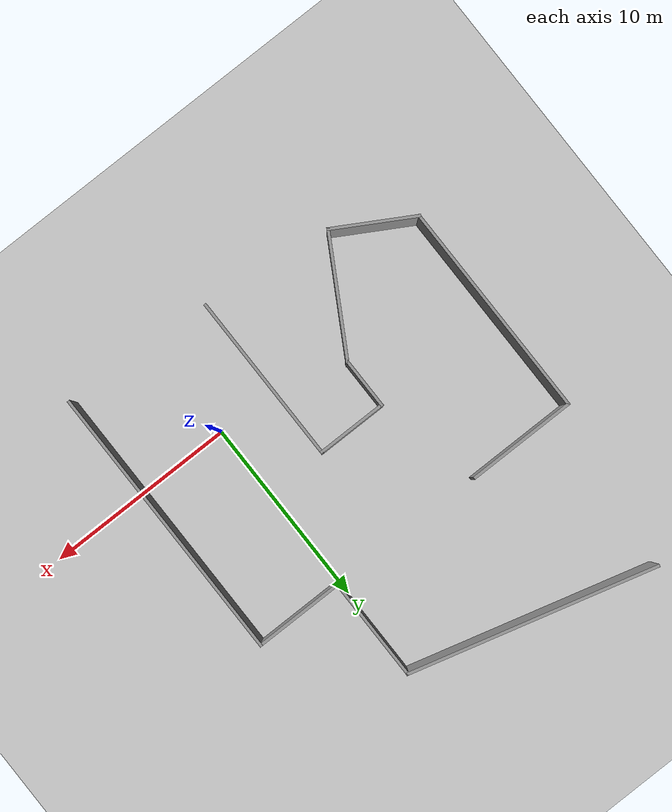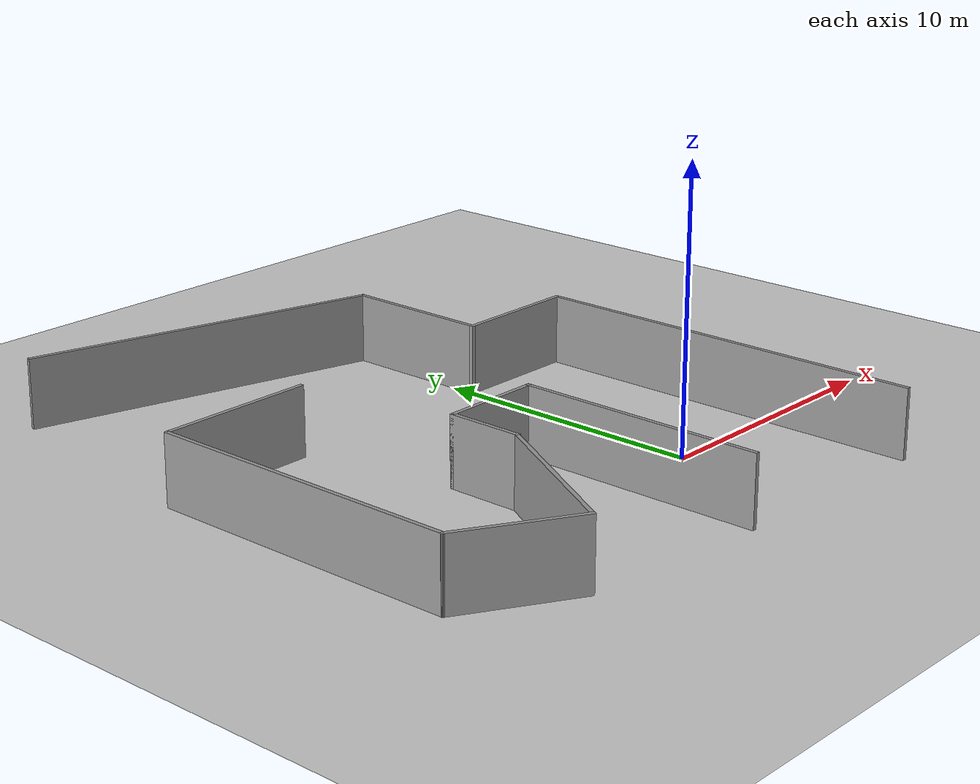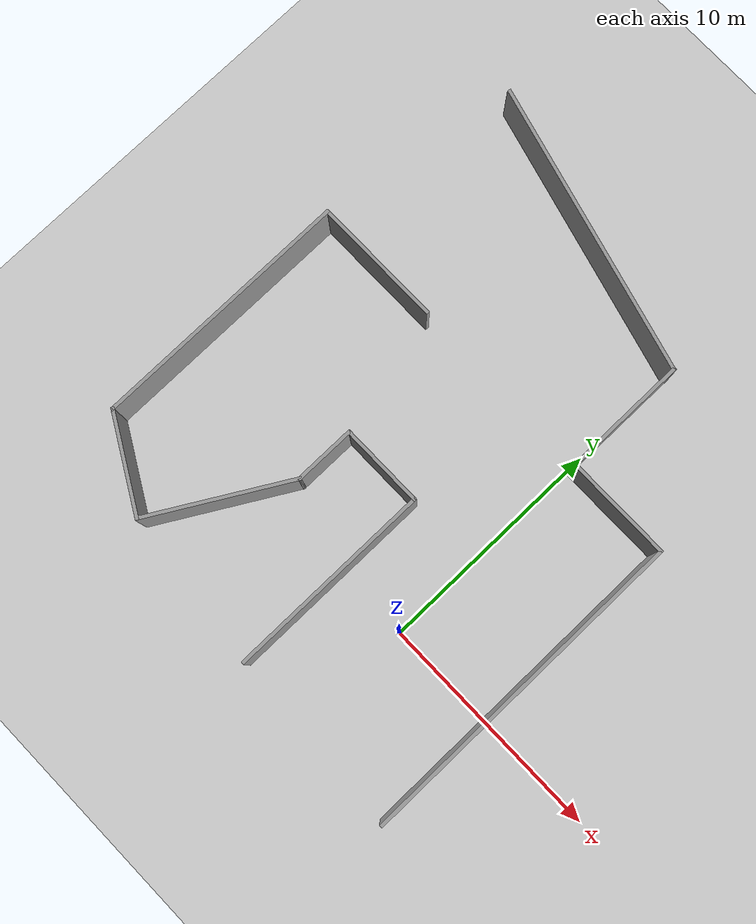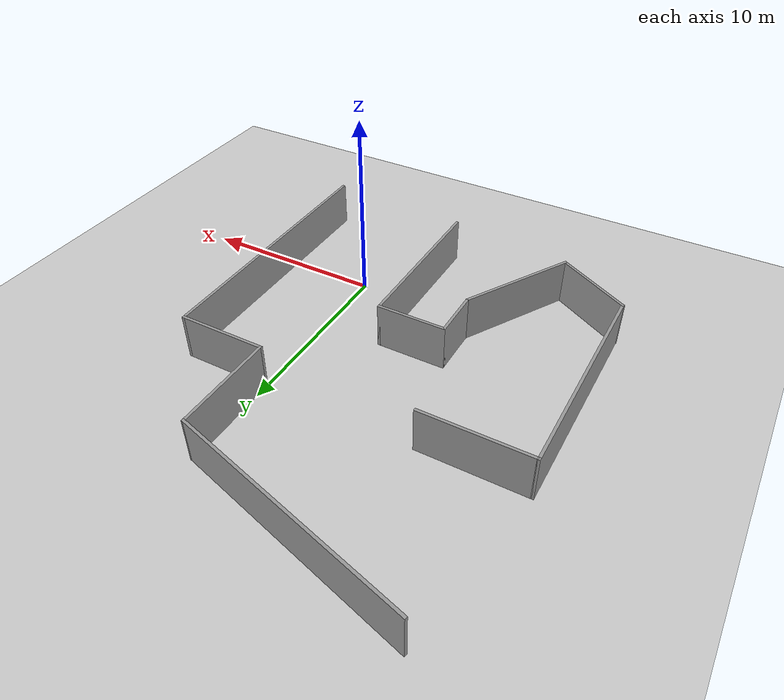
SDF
<sdf version="1.7">
 <world name="default">
  <light name="sun" type="directional">
   <pose>0 0 10 0 -0 0</pose>
   <diffuse>0.8 0.8 0.8 1</diffuse>
   <specular>0.2 0.2 0.2 1</specular>
   <attenuation>
    <range>1000</range>
    <constant>0.9</constant>
    <linear>0.01</linear>
    <quadratic>0.001</quadratic>
   </attenuation>
   <direction>-0.5 0.1 -0.9</direction>
   <spot><inner_angle>0</inner_angle><outer_angle>0</outer_angle><falloff>0</falloff></spot>
  </light>
  <model name="ground_plane">
   <static>1</static>
   <link name="link">
    <collision name="collision">
     <geometry><plane><normal>0 0 1</normal><size>100 100</size></plane></geometry>
     <surface>
      <contact><collide_bitmask>65535</collide_bitmask></contact>
      <friction><ode><mu>100</mu><mu2>50</mu2></ode></friction>
     </surface>
    </collision>
    <visual name="visual">
     <cast_shadows>0</cast_shadows>
     <geometry><plane><normal>0 0 1</normal><size>100 100</size></plane></geometry>
     <material>
      <script><uri>file://media/materials/scripts/gazebo.material</uri><name>Gazebo/Grey</name></script>
     </material>
    </visual>
   </link>
  </model>
  <gravity>0 0 -9.8</gravity>
  <magnetic_field>6e-06 2.3e-05 -4.2e-05</magnetic_field>
  <atmosphere type="adiabatic"/>
  <physics type="ode">
   <max_step_size>0.001</max_step_size>
   <real_time_factor>1</real_time_factor>
   <real_time_update_rate>1000</real_time_update_rate>
  </physics>
  <scene><ambient>0.4 0.4 0.4 1</ambient><background>0.7 0.7 0.7 1</background><shadows>1</shadows></scene>
  <spherical_coordinates>
   <surface_model>EARTH_WGS84</surface_model>
   <latitude_deg>0</latitude_deg>
   <longitude_deg>0</longitude_deg>
   <elevation>0</elevation>
   <heading_deg>0</heading_deg>
  </spherical_coordinates>
  <model name="test">
   <pose>-4.55443 6.25959 0 0 -0 0</pose>
   <link name="Wall_0">
    <collision name="Wall_0_Collision">
     <geometry><box><size>11.5 0.15 2.5</size></box></geometry>
     <pose>0 0 1.25 0 -0 0</pose>
    </collision>
    <visual name="Wall_0_Visual">
     <pose>0 0 1.25 0 -0 0</pose>
     <geometry><box><size>11.5 0.15 2.5</size></box></geometry>
     <material>
      <script><uri>file://media/materials/scripts/gazebo.material</uri><name>Gazebo/Grey</name></script>
      <ambient>1 1 1 1</ambient>
     </material>
     <meta><layer>0</layer></meta>
    </visual>
    <pose>-9.2033 -2.65803 0 0 -0 1.5708</pose>
   </link>
   <link name="Wall_1">
    <collision name="Wall_1_Collision">
     <geometry><box><size>5.75 0.15 2.5</size></box></geometry>
     <pose>0 0 1.25 0 -0 0</pose>
    </collision>
    <visual name="Wall_1_Visual">
     <pose>0 0 1.25 0 -0 0</pose>
     <geometry><box><size>5.75 0.15 2.5</size></box></geometry>
     <material>
      <script><uri>file://media/materials/scripts/gazebo.material</uri><name>Gazebo/Grey</name></script>
      <ambient>1 1 1 1</ambient>
     </material>
     <meta><layer>0</layer></meta>
    </visual>
    <pose>-6.40329 3.01697 0 0 -0 0</pose>
   </link>
   <link name="Wall_10">
    <collision name="Wall_10_Collision">
     <geometry><box><size>4.75 0.15 2.5</size></box></geometry>
     <pose>0 0 1.25 0 -0 0</pose>
    </collision>
    <visual name="Wall_10_Visual">
     <pose>0 0 1.25 0 -0 0</pose>
     <geometry><box><size>4.75 0.15 2.5</size></box></geometry>
     <material>
      <script><uri>file://media/materials/scripts/gazebo.material</uri><name>Gazebo/Grey</name></script>
      <ambient>1 1 1 1</ambient>
     </material>
     <meta><layer>0</layer></meta>
    </visual>
    <pose>6.93074 2.95366 0 0 -0 3.14159</pose>
   </link>
   <link name="Wall_11">
    <collision name="Wall_11_Collision">
     <geometry><box><size>5.5 0.15 2.5</size></box></geometry>
     <pose>0 0 1.25 0 -0 0</pose>
    </collision>
    <visual name="Wall_11_Visual">
     <pose>0 0 1.25 0 -0 0</pose>
     <geometry><box><size>5.5 0.15 2.5</size></box></geometry>
     <material>
      <script><uri>file://media/materials/scripts/gazebo.material</uri><name>Gazebo/Grey</name></script>
      <ambient>1 1 1 1</ambient>
     </material>
     <meta><layer>0</layer></meta>
    </visual>
    <pose>4.63075 5.62866 0 0 -0 1.5708</pose>
   </link>
   <link name="Wall_12">
    <collision name="Wall_12_Collision">
     <geometry><box><size>13 0.15 2.5</size></box></geometry>
     <pose>0 0 1.25 0 -0 0</pose>
    </collision>
    <visual name="Wall_12_Visual">
     <pose>0 0 1.25 0 -0 0</pose>
     <geometry><box><size>13 0.15 2.5</size></box></geometry>
     <material>
      <script><uri>file://media/materials/scripts/gazebo.material</uri><name>Gazebo/Grey</name></script>
      <ambient>1 1 1 1</ambient>
     </material>
     <meta><layer>0</layer></meta>
    </visual>
    <pose>-1.57533 9.96657 0 0 -0 2.87979</pose>
   </link>
   <link name="Wall_3">
    <collision name="Wall_3_Collision">
     <geometry><box><size>4.5 0.15 2.5</size></box></geometry>
     <pose>0 0 1.25 0 -0 0</pose>
    </collision>
    <visual name="Wall_3_Visual">
     <pose>0 0 1.25 0 -0 0</pose>
     <geometry><box><size>4.5 0.15 2.5</size></box></geometry>
     <material>
      <script><uri>file://media/materials/scripts/gazebo.material</uri><name>Gazebo/Grey</name></script>
      <ambient>1 1 1 1</ambient>
     </material>
     <meta><layer>0</layer></meta>
    </visual>
    <pose>-7.31969 -9.42053 0 0 -0 -0.523599</pose>
   </link>
   <link name="Wall_4">
    <collision name="Wall_4_Collision">
     <geometry><box><size>6.5 0.15 2.5</size></box></geometry>
     <pose>0 0 1.25 0 -0 0</pose>
    </collision>
    <visual name="Wall_4_Visual">
     <pose>0 0 1.25 0 -0 0</pose>
     <geometry><box><size>6.5 0.15 2.5</size></box></geometry>
     <material>
      <script><uri>file://media/materials/scripts/gazebo.material</uri><name>Gazebo/Grey</name></script>
      <ambient>1 1 1 1</ambient>
     </material>
     <meta><layer>0</layer></meta>
    </visual>
    <pose>-3.84858 -7.7584 0 0 -0 1.0472</pose>
   </link>
   <link name="Wall_5">
    <collision name="Wall_5_Collision">
     <geometry><box><size>2.75 0.15 2.5</size></box></geometry>
     <pose>0 0 1.25 0 -0 0</pose>
    </collision>
    <visual name="Wall_5_Visual">
     <pose>0 0 1.25 0 -0 0</pose>
     <geometry><box><size>2.75 0.15 2.5</size></box></geometry>
     <material>
      <script><uri>file://media/materials/scripts/gazebo.material</uri><name>Gazebo/Grey</name></script>
      <ambient>1 1 1 1</ambient>
     </material>
     <meta><layer>0</layer></meta>
    </visual>
    <pose>-2.26108 -3.70877 0 0 -0 1.5708</pose>
   </link>
   <link name="Wall_6">
    <collision name="Wall_6_Collision">
     <geometry><box><size>3.75 0.15 2.5</size></box></geometry>
     <pose>0 0 1.25 0 -0 0</pose>
    </collision>
    <visual name="Wall_6_Visual">
     <pose>0 0 1.25 0 -0 0</pose>
     <geometry><box><size>3.75 0.15 2.5</size></box></geometry>
     <material>
      <script><uri>file://media/materials/scripts/gazebo.material</uri><name>Gazebo/Grey</name></script>
      <ambient>1 1 1 1</ambient>
     </material>
     <meta><layer>0</layer></meta>
    </visual>
    <pose>-0.461084 -2.40877 0 0 -0 0</pose>
   </link>
   <link name="Wall_7">
    <collision name="Wall_7_Collision">
     <geometry><box><size>9 0.15 2.5</size></box></geometry>
     <pose>0 0 1.25 0 -0 0</pose>
    </collision>
    <visual name="Wall_7_Visual">
     <pose>0 0 1.25 0 -0 0</pose>
     <geometry><box><size>9 0.15 2.5</size></box></geometry>
     <material>
      <script><uri>file://media/materials/scripts/gazebo.material</uri><name>Gazebo/Grey</name></script>
      <ambient>1 1 1 1</ambient>
     </material>
     <meta><layer>0</layer></meta>
    </visual>
    <pose>1.33892 -6.83377 0 0 -0 -1.5708</pose>
   </link>
   <link name="Wall_9">
    <collision name="Wall_9_Collision">
     <geometry><box><size>14.75 0.15 2.5</size></box></geometry>
     <pose>0 0 1.25 0 -0 0</pose>
    </collision>
    <visual name="Wall_9_Visual">
     <pose>0 0 1.25 0 -0 0</pose>
     <geometry><box><size>14.75 0.15 2.5</size></box></geometry>
     <material>
      <script><uri>file://media/materials/scripts/gazebo.material</uri><name>Gazebo/Grey</name></script>
      <ambient>1 1 1 1</ambient>
     </material>
     <meta><layer>0</layer></meta>
    </visual>
    <pose>9.23075 -4.34634 0 0 -0 1.5708</pose>
   </link>
   <static>1</static>
  </model>
 </world>
</sdf>
